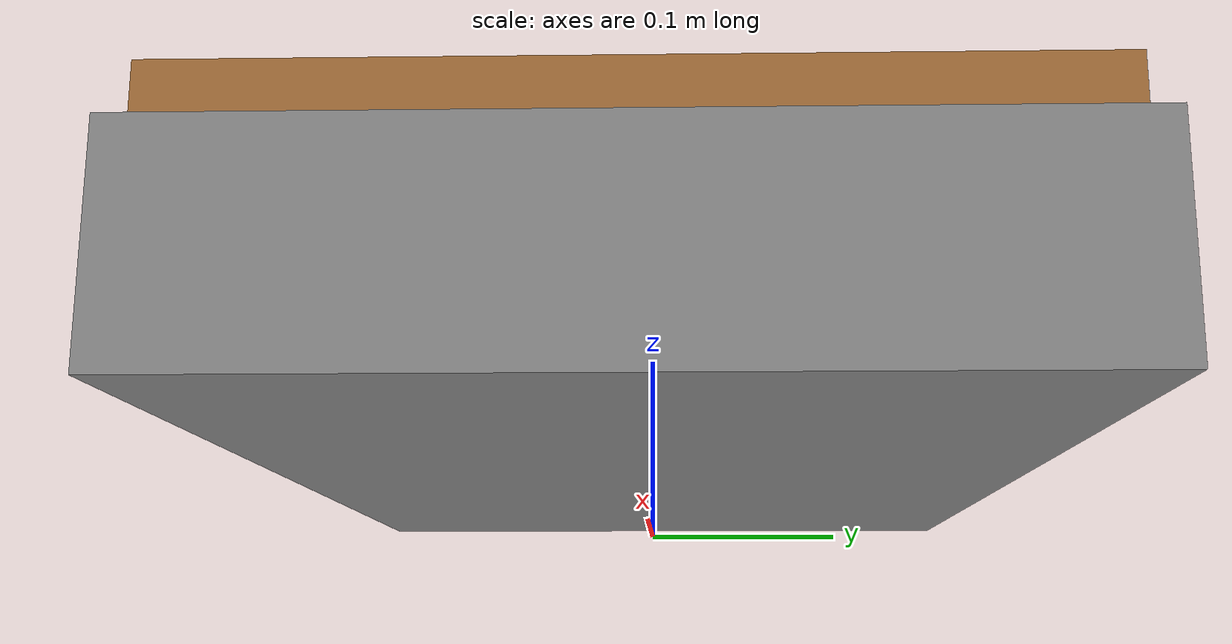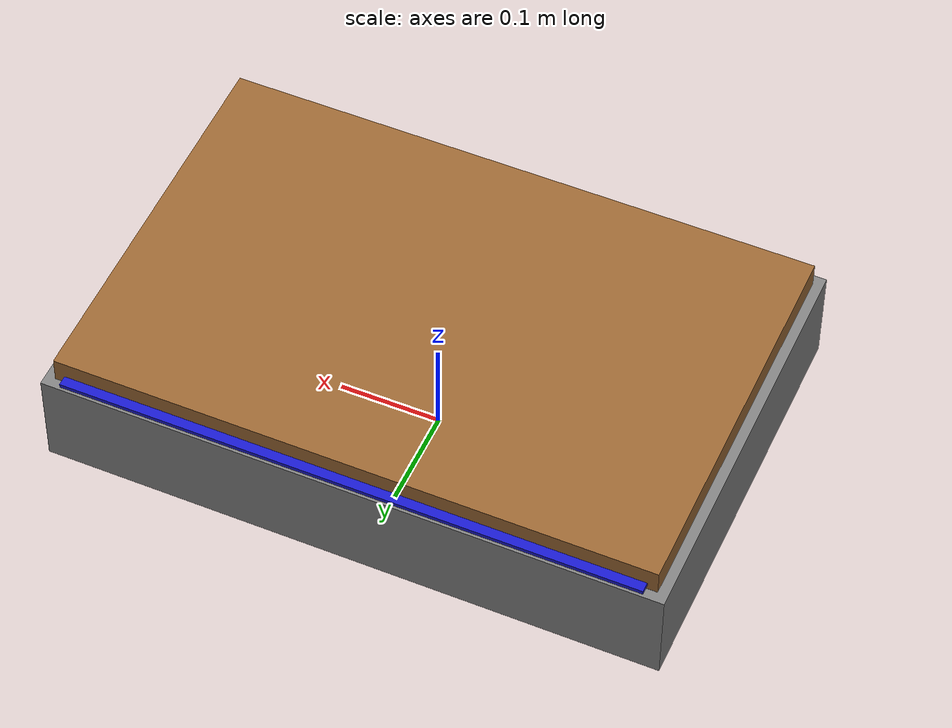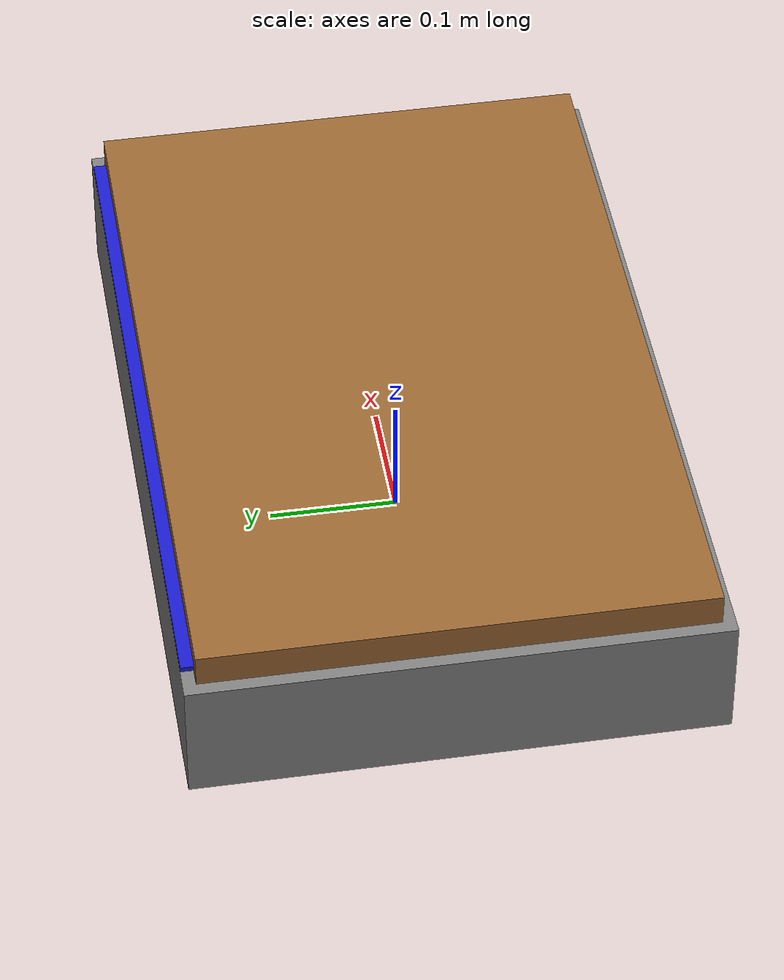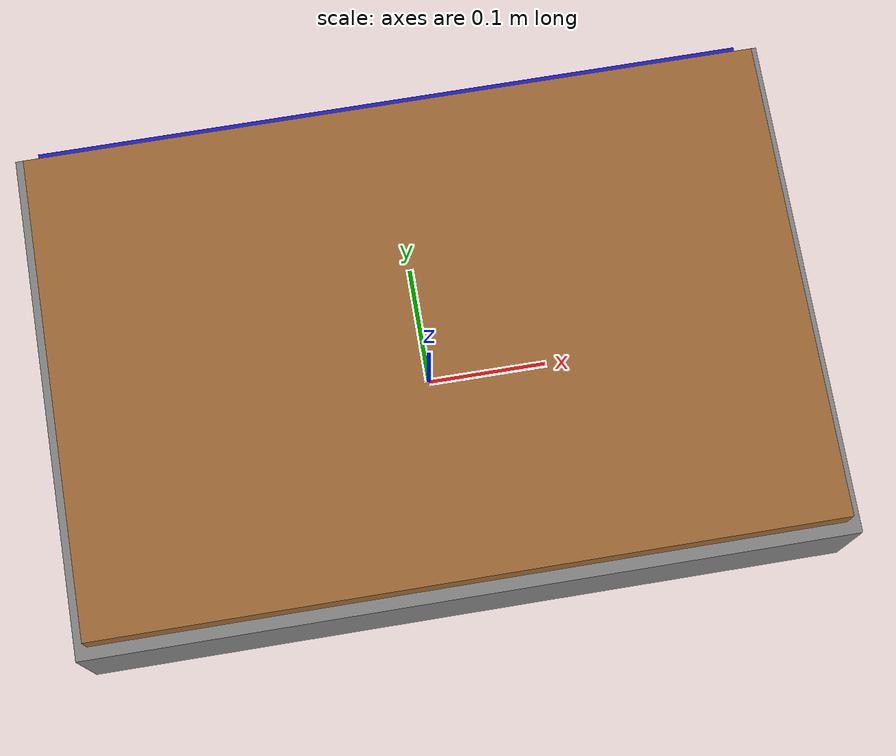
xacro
<?xml version="1.0"?>
<robot xmlns:xacro="http://www.ros.org/wiki/xacro">

  <!-- ================= PROPERTIES ================= -->

  <!--
    24 inch = 0.6096m → X axis (WIDE,  left to right)
    16 inch = 0.4064m → Y axis (SHORT, front to back)
  -->
  <xacro:property name="base_length" value="0.6096"/>  <!-- X = 24inch -->
  <xacro:property name="base_width"  value="0.4064"/>  <!-- Y = 16inch -->
  <xacro:property name="base_height" value="0.10"/>
  <xacro:property name="base_mass"   value="18.5"/>  <!-- 15.0 + ~3.5kg wood -->

  <xacro:property name="wheel_radius" value="0.03175"/>
  <xacro:property name="wheel_width"  value="0.0203"/>
  <xacro:property name="wheel_mass"   value="0.5"/>

  <xacro:property name="caster_radius" value="0.025"/>
  <xacro:property name="caster_width"  value="0.02"/>
  <xacro:property name="caster_mass"   value="0.2"/>

  <xacro:property name="wheel_x_offset" value="0.27"/>
  <xacro:property name="wheel_y_offset" value="0.17"/>
  <xacro:property name="front_y"        value=" 0.17"/>
  <xacro:property name="rear_y"         value="-0.17"/>

  <!-- ================= MATERIALS ================= -->

  <material name="grey">
    <color rgba="0.5 0.5 0.5 1.0"/>
  </material>
  <material name="dark_grey">
    <color rgba="0.15 0.15 0.15 1.0"/>
  </material>
  <material name="red">
    <color rgba="0.8 0.1 0.1 1.0"/>
  </material>
  <material name="white">
    <color rgba="0.9 0.9 0.9 1.0"/>
  </material>
  <material name="wood">
    <color rgba="0.6 0.4 0.2 1.0"/>
  </material>
  <material name="blue">
    <color rgba="0.1 0.1 0.8 1.0"/>
  </material>

  <!-- ================= BASE FOOTPRINT ================= -->

  <link name="base_footprint"/>

  <joint name="base_footprint_joint" type="fixed">
    <parent link="base_footprint"/>
    <child  link="base_link"/>
    <origin xyz="0 0 ${base_height/2.0 + wheel_radius}" rpy="0 0 0"/>
  </joint>

  <!-- ================= BASE LINK ================= -->

  <link name="base_link">

    <!-- Chassis box: x=24inch, y=16inch, z=height -->
    <visual>
      <origin xyz="0 0 0" rpy="0 0 0"/>
      <geometry>
        <box size="${base_length} ${base_width} ${base_height}"/>
      </geometry>
      <material name="grey"/>
    </visual>

    <!-- Wooden top layer (1 inch thick) -->
    <visual>
      <origin xyz="0 0 ${base_height/2.0 + 0.0254/2.0}" rpy="0 0 0"/>
      <geometry>
        <box size="${base_length - 0.02} ${base_width - 0.02} 0.0254"/>
      </geometry>
      <material name="wood"/>
    </visual>

    <collision>
      <origin xyz="0 0 ${base_height/2.0 + 0.0254/2.0}" rpy="0 0 0"/>
      <geometry>
        <box size="${base_length - 0.02} ${base_width - 0.02} 0.0254"/>
      </geometry>
    </collision>

    <!-- Front marker (blue strip at +Y face) -->
    <visual>
      <origin xyz="0 ${base_width/2.0 - 0.01} ${base_height/2.0 + 0.006}" rpy="0 0 0"/>
      <geometry>
        <box size="${base_length - 0.04} 0.02 0.004"/>
      </geometry>
      <material name="blue"/>
    </visual>

    <collision>
      <origin xyz="0 0 0" rpy="0 0 0"/>
      <geometry>
        <box size="${base_length} ${base_width} ${base_height}"/>
      </geometry>
    </collision>

    <inertial>
      <mass value="${base_mass}"/>
      <origin xyz="0 0 0" rpy="0 0 0"/>
      <inertia ixx="0.318" ixy="0.0" ixz="0.0"
               iyy="0.679" iyz="0.0"
               izz="0.944"/>
    </inertial>

  </link>

</robot>
